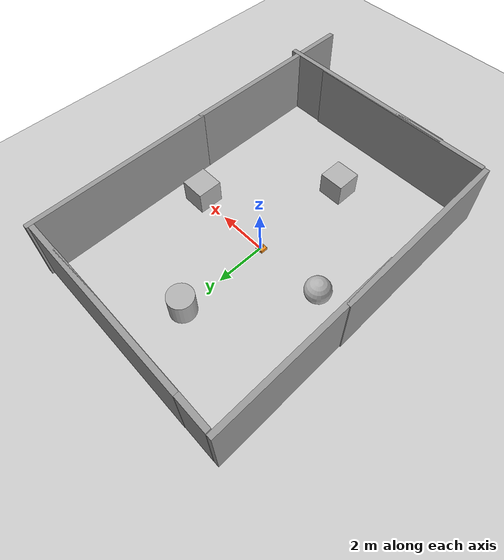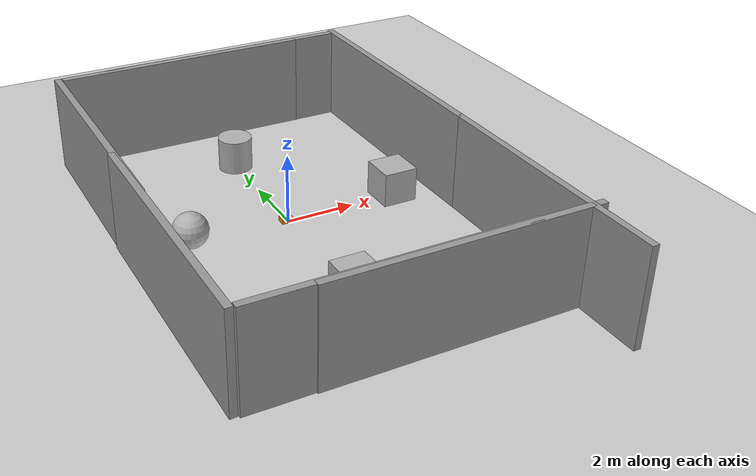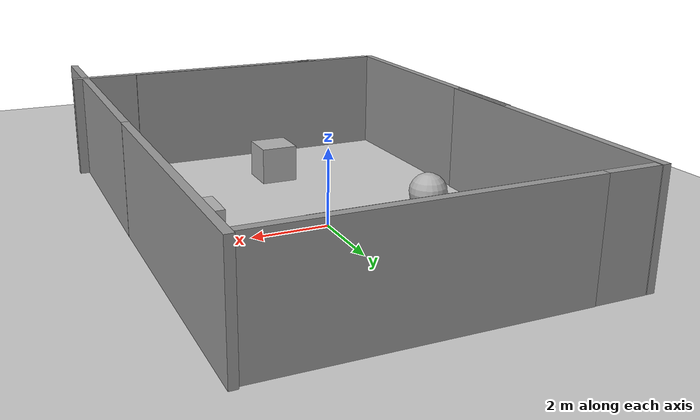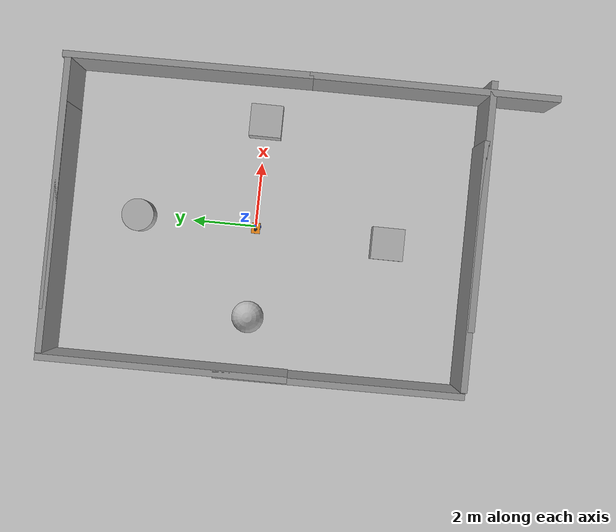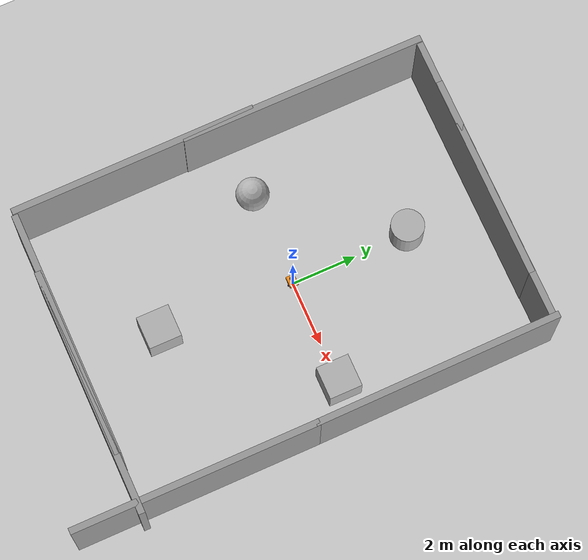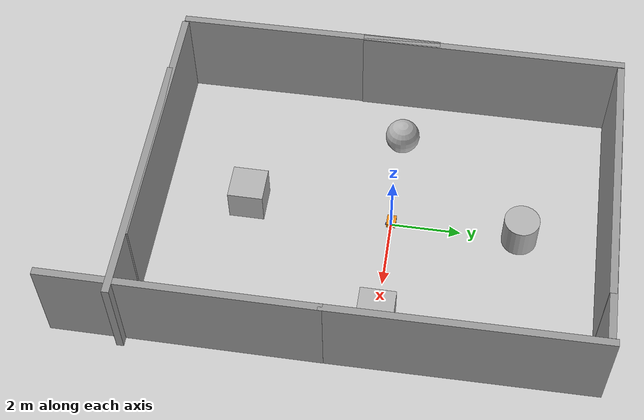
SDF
<sdf version="1.9">
 <world name="empty">
  <physics name="1ms" type="ignored">
   <max_step_size>0.001</max_step_size>
   <real_time_factor>1</real_time_factor>
   <real_time_update_rate>1000</real_time_update_rate>
  </physics>
  <plugin name="gz::sim::systems::Physics" filename="gz-sim-physics-system"/>
  <plugin name="gz::sim::systems::UserCommands" filename="gz-sim-user-commands-system"/>
  <plugin name="gz::sim::systems::SceneBroadcaster" filename="gz-sim-scene-broadcaster-system"/>
  <plugin name="gz::sim::systems::Sensors" filename="gz-sim-sensors-system">
   <render_engine>ogre2</render_engine>
  </plugin>
  <plugin name="gz::sim::systems::Contact" filename="gz-sim-contact-system"/>
  <gravity>0 0 -9.8</gravity>
  <magnetic_field>6e-06 2.3e-05 -4.2e-05</magnetic_field>
  <atmosphere type="adiabatic"/>
  <scene><ambient>0.4 0.4 0.4 1</ambient><background>0.7 0.7 0.7 1</background><shadows>true</shadows></scene>
  <model name="ground_plane">
   <static>true</static>
   <link name="link">
    <collision name="collision">
     <geometry><plane><normal>0 0 1</normal><size>100 100</size></plane></geometry>
    </collision>
    <visual name="visual">
     <geometry><plane><normal>0 0 1</normal><size>100 100</size></plane></geometry>
     <material>
      <ambient>0.8 0.8 0.8 1</ambient>
      <diffuse>0.8 0.8 0.8 1</diffuse>
      <specular>0.8 0.8 0.8 1</specular>
     </material>
    </visual>
    <inertial>
     <mass>1</mass>
     <inertia><ixx>1</ixx><ixy>0</ixy><ixz>0</ixz><iyy>1</iyy><iyz>0</iyz><izz>1</izz></inertia>
    </inertial>
   </link>
  </model>
  <model name="my_bot">
   <link name="base_link">
    <inertial>
     <pose>-0.066387 0 0.080597 0 -0 0</pose>
     <mass>0.62</mass>
     <inertia>
      <ixx>0.0056295399999999997</ixx>
      <ixy>0</ixy>
      <ixz>0.00047445700000000001</ixz>
      <iyy>0.0076677899999999998</iyy>
      <iyz>0</iyz>
      <izz>0.00802573</izz>
     </inertia>
    </inertial>
    <collision name="base_link_fixed_joint_lump__chassis_collision">
     <pose>-0.0585 0 0.059 0 0 0</pose>
     <geometry><box><size>0.335 0.265 0.138</size></box></geometry>
    </collision>
    <collision name="base_link_fixed_joint_lump__caster_wheel_collision_1">
     <pose>-0.151 0 -0.023 0 0 0</pose>
     <geometry><sphere><radius>0.01</radius></sphere></geometry>
     <surface><friction><ode><mu>0.001</mu><mu2>0.001</mu2></ode></friction></surface>
    </collision>
    <collision name="base_link_fixed_joint_lump__laser_frame_collision_2">
     <pose>-0.104 0 0.202 0 0 0</pose>
     <geometry>
      <cylinder><length>0.040000000000000001</length><radius>0.050000000000000003</radius></cylinder>
     </geometry>
    </collision>
    <collision name="base_link_fixed_joint_lump__imu_link_collision_3">
     <pose>0 0 0.05 0 0 0</pose>
     <geometry><box><size>0.02 0.02 0.02</size></box></geometry>
    </collision>
    <visual name="base_link_fixed_joint_lump__chassis_visual">
     <pose>-0.0585 0 0.059 0 0 0</pose>
     <geometry><box><size>0.335 0.265 0.138</size></box></geometry>
     <material>
      <script><name>Gazebo/Orange</name><uri>file://media/materials/scripts/gazebo.material</uri></script>
      <diffuse>1 0.375 0.125 1</diffuse>
      <ambient>1 0.375 0.125 1</ambient>
     </material>
    </visual>
    <visual name="base_link_fixed_joint_lump__camera_link_visual_1">
     <pose>0.05000000000000002 0 0.171 0 0.18 0</pose>
     <geometry><box><size>0.01 0.03 0.03</size></box></geometry>
     <material>
      <script><name>Gazebo/Black</name><uri>file://media/materials/scripts/gazebo.material</uri></script>
      <diffuse>0 0 0 1</diffuse>
      <ambient>0 0 0 1</ambient>
     </material>
    </visual>
    <visual name="base_link_fixed_joint_lump__camera_link_visual_2">
     <pose>0.04104852132870881 0 0.1218078153605939 0 0.18 0</pose>
     <geometry><cylinder><length>0.10000000000000001</length><radius>0.002</radius></cylinder></geometry>
     <material>
      <script><name>Gazebo/Black</name><uri>file://media/materials/scripts/gazebo.material</uri></script>
      <diffuse>0 0 0 1</diffuse>
      <ambient>0 0 0 1</ambient>
     </material>
    </visual>
    <visual name="base_link_fixed_joint_lump__caster_wheel_visual_3">
     <pose>-0.151 0 -0.023 0 0 0</pose>
     <geometry><sphere><radius>0.01</radius></sphere></geometry>
     <material>
      <script><name>Gazebo/White</name><uri>file://media/materials/scripts/gazebo.material</uri></script>
      <diffuse>1 1 1 1</diffuse>
      <ambient>1 1 1 1</ambient>
     </material>
    </visual>
    <visual name="base_link_fixed_joint_lump__face_link_visual_4">
     <pose>0.109 0.05 0.06900000000000001 0 1.570796326794897 0</pose>
     <geometry><cylinder><length>0.002</length><radius>0.01</radius></cylinder></geometry>
     <material>
      <script><name>Gazebo/Black</name><uri>file://media/materials/scripts/gazebo.material</uri></script>
      <diffuse>0 0 0 1</diffuse>
      <ambient>0 0 0 1</ambient>
     </material>
    </visual>
    <visual name="base_link_fixed_joint_lump__face_link_visual_5">
     <pose>0.109 -0.05 0.06900000000000001 0 1.570796326794897 0</pose>
     <geometry><cylinder><length>0.002</length><radius>0.01</radius></cylinder></geometry>
     <material>
      <script><name>Gazebo/Black</name><uri>file://media/materials/scripts/gazebo.material</uri></script>
      <diffuse>0 0 0 1</diffuse>
      <ambient>0 0 0 1</ambient>
     </material>
    </visual>
    <visual name="base_link_fixed_joint_lump__face_link_visual_6">
     <pose>0.098 0 0.059 0 1.499999999999999 0</pose>
     <geometry><cylinder><length>0.02</length><radius>0.050000000000000003</radius></cylinder></geometry>
     <material>
      <script><name>Gazebo/Black</name><uri>file://media/materials/scripts/gazebo.material</uri></script>
      <diffuse>0 0 0 1</diffuse>
      <ambient>0 0 0 1</ambient>
     </material>
    </visual>
    <visual name="base_link_fixed_joint_lump__laser_frame_visual_7">
     <pose>-0.104 0 0.202 0 0 0</pose>
     <geometry>
      <cylinder><length>0.040000000000000001</length><radius>0.050000000000000003</radius></cylinder>
     </geometry>
     <material>
      <script><name>Gazebo/Black</name><uri>file://media/materials/scripts/gazebo.material</uri></script>
      <diffuse>0 0 0 1</diffuse>
      <ambient>0 0 0 1</ambient>
     </material>
    </visual>
    <visual name="base_link_fixed_joint_lump__laser_frame_visual_8">
     <pose>-0.104 0 0.152 0 0 0</pose>
     <geometry><cylinder><length>0.10000000000000001</length><radius>0.01</radius></cylinder></geometry>
     <material>
      <script><name>Gazebo/Black</name><uri>file://media/materials/scripts/gazebo.material</uri></script>
      <diffuse>0 0 0 1</diffuse>
      <ambient>0 0 0 1</ambient>
     </material>
    </visual>
    <visual name="base_link_fixed_joint_lump__imu_link_visual_9">
     <pose>0 0 0.05 0 0 0</pose>
     <geometry><box><size>0.02 0.02 0.02</size></box></geometry>
     <material><diffuse>0 0 1 1</diffuse><ambient>0 0 1 1</ambient></material>
    </visual>
    <sensor name="camera" type="camera">
     <pose>0.05 0 0.171 0 0.18 0</pose>
     <topic>camera/image_raw</topic>
     <update_rate>10</update_rate>
     <enable_metrics>false</enable_metrics>
     <camera name="__default__">
      <horizontal_fov>1.089</horizontal_fov>
      <image><width>640</width><height>480</height><format>RGB_INT8</format><anti_aliasing>4</anti_aliasing></image>
      <camera_info_topic>camera/camera_info</camera_info_topic>
      <triggered>false</triggered>
      <clip><near>0.050000000000000003</near><far>8</far></clip>
      <save enabled="false"><path>__default__</path></save>
      <visibility_mask>4294967295</visibility_mask>
      <noise><type>none</type><mean>0</mean><stddev>0</stddev></noise>
      <distortion><k1>0</k1><k2>0</k2><k3>0</k3><p1>0</p1><p2>0</p2><center>0.5 0.5</center></distortion>
      <lens>
       <type>stereographic</type>
       <scale_to_hfov>true</scale_to_hfov>
       <cutoff_angle>1.5708</cutoff_angle>
       <env_texture_size>256</env_texture_size>
      </lens>
     </camera>
    </sensor>
    <sensor name="laser" type="gpu_lidar">
     <pose>-0.104 0 0.202 0 -0 0</pose>
     <topic>scan</topic>
     <update_rate>10</update_rate>
     <enable_metrics>false</enable_metrics>
     <lidar>
      <scan>
       <horizontal>
        <samples>360</samples>
        <resolution>1</resolution>
        <min_angle>-3.1400000000000001</min_angle>
        <max_angle>3.1400000000000001</max_angle>
       </horizontal>
       <vertical>
        <samples>1</samples>
        <min_angle>0</min_angle>
        <max_angle>0</max_angle>
        <resolution>1</resolution>
       </vertical>
      </scan>
      <range><min>0.29999999999999999</min><max>12</max><resolution>0</resolution></range>
      <noise><type>none</type><mean>0</mean><stddev>0</stddev></noise>
      <visibility_mask>4294967295</visibility_mask>
     </lidar>
    </sensor>
    <sensor name="depth_camera" type="depth_camera">
     <pose>0.1 0 0.2 0 -0 0</pose>
     <topic>depth_camera/image_raw</topic>
     <update_rate>30</update_rate>
     <enable_metrics>false</enable_metrics>
     <camera name="__default__">
      <horizontal_fov>1.0469999999999999</horizontal_fov>
      <image><width>640</width><height>480</height><format>BGR_INT8</format><anti_aliasing>4</anti_aliasing></image>
      <camera_info_topic>depth_camera/camera_info</camera_info_topic>
      <triggered>false</triggered>
      <clip><near>0.10000000000000001</near><far>10</far></clip>
      <save enabled="false"><path>__default__</path></save>
      <visibility_mask>4294967295</visibility_mask>
      <noise><type>none</type><mean>0</mean><stddev>0</stddev></noise>
      <distortion><k1>0</k1><k2>0</k2><k3>0</k3><p1>0</p1><p2>0</p2><center>0.5 0.5</center></distortion>
      <lens>
       <type>stereographic</type>
       <scale_to_hfov>true</scale_to_hfov>
       <cutoff_angle>1.5708</cutoff_angle>
       <env_texture_size>256</env_texture_size>
      </lens>
     </camera>
    </sensor>
    <sensor name="imu_sensor" type="imu">
     <pose>0 0 0.05 0 -0 0</pose>
     <topic>imu/data</topic>
     <update_rate>100</update_rate>
     <enable_metrics>false</enable_metrics>
     <imu>
      <orientation_reference_frame>
       <localization>CUSTOM</localization>
       <custom_rpy>0 0 0</custom_rpy>
       <grav_dir_x>1 0 0</grav_dir_x>
      </orientation_reference_frame>
      <angular_velocity>
       <x>
        <noise type="gaussian">
         <mean>0</mean>
         <stddev>0.0089999999999999993</stddev>
         <bias_mean>0.00075000000000000002</bias_mean>
         <bias_stddev>0.0050000000000000001</bias_stddev>
         <dynamic_bias_stddev>2.0000000000000002e-05</dynamic_bias_stddev>
         <dynamic_bias_correlation_time>400</dynamic_bias_correlation_time>
         <precision>0.00025000000000000001</precision>
        </noise>
       </x>
       <y>
        <noise type="gaussian">
         <mean>0</mean>
         <stddev>0.0089999999999999993</stddev>
         <bias_mean>0.00075000000000000002</bias_mean>
         <bias_stddev>0.0050000000000000001</bias_stddev>
         <dynamic_bias_stddev>2.0000000000000002e-05</dynamic_bias_stddev>
         <dynamic_bias_correlation_time>400</dynamic_bias_correlation_time>
         <precision>0.00025000000000000001</precision>
        </noise>
       </y>
       <z>
        <noise type="gaussian">
         <mean>0</mean>
         <stddev>0.0001</stddev>
         <bias_mean>0</bias_mean>
         <bias_stddev>1.0000000000000001e-05</bias_stddev>
         <dynamic_bias_stddev>0</dynamic_bias_stddev>
         <dynamic_bias_correlation_time>1</dynamic_bias_correlation_time>
         <precision>1.0000000000000001e-05</precision>
        </noise>
       </z>
      </angular_velocity>
      <linear_acceleration>
       <x>
        <noise type="gaussian">
         <mean>0</mean>
         <stddev>0.021000000000000001</stddev>
         <bias_mean>0.050000000000000003</bias_mean>
         <bias_stddev>0.0074999999999999997</bias_stddev>
         <dynamic_bias_stddev>0.00037500000000000001</dynamic_bias_stddev>
         <dynamic_bias_correlation_time>175</dynamic_bias_correlation_time>
         <precision>0.0050000000000000001</precision>
        </noise>
       </x>
       <y>
        <noise type="gaussian">
         <mean>0</mean>
         <stddev>0.021000000000000001</stddev>
         <bias_mean>0.050000000000000003</bias_mean>
         <bias_stddev>0.0074999999999999997</bias_stddev>
         <dynamic_bias_stddev>0.00037500000000000001</dynamic_bias_stddev>
         <dynamic_bias_correlation_time>175</dynamic_bias_correlation_time>
         <precision>0.0050000000000000001</precision>
        </noise>
       </y>
       <z>
        <noise type="gaussian">
         <mean>0</mean>
         <stddev>0.001</stddev>
         <bias_mean>0</bias_mean>
         <bias_stddev>0.00050000000000000001</bias_stddev>
         <dynamic_bias_stddev>0</dynamic_bias_stddev>
         <dynamic_bias_correlation_time>1</dynamic_bias_correlation_time>
         <precision>0.001</precision>
        </noise>
       </z>
      </linear_acceleration>
      <enable_orientation>true</enable_orientation>
     </imu>
     <plugin name="ignition::gazebo::systems::Imu" filename="ignition-gazebo-imu-system"/>
    </sensor>
   </link>
   <joint name="left_wheel_joint" type="revolute">
    <parent>base_link</parent>
    <child>left_wheel</child>
    <axis>
     <xyz>0 0 1</xyz>
     <limit>
      <lower>-10000000000000000</lower>
      <upper>10000000000000000</upper>
      <effort>inf</effort>
      <velocity>inf</velocity>
      <stiffness>100000000</stiffness>
      <dissipation>1</dissipation>
     </limit>
     <dynamics>
      <spring_reference>0</spring_reference>
      <spring_stiffness>0</spring_stiffness>
      <damping>0</damping>
      <friction>0</friction>
     </dynamics>
    </axis>
   </joint>
   <link name="left_wheel">
    <pose>0 0.1485 0 -1.5708 -0 -0</pose>
    <inertial>
     <mass>0.050000000000000003</mass>
     <inertia>
      <ixx>1.6429199999999998e-05</ixx>
      <ixy>0</ixy>
      <ixz>0</ixz>
      <iyy>1.6429199999999998e-05</iyy>
      <iyz>0</iyz>
      <izz>2.7225000000000001e-05</izz>
     </inertia>
    </inertial>
    <collision name="left_wheel_collision">
     <geometry><sphere><radius>0.033000000000000002</radius></sphere></geometry>
    </collision>
    <visual name="left_wheel_visual">
     <geometry>
      <cylinder><length>0.025999999999999999</length><radius>0.033000000000000002</radius></cylinder>
     </geometry>
     <material>
      <script><name>Gazebo/Blue</name><uri>file://media/materials/scripts/gazebo.material</uri></script>
      <diffuse>0.25 0.25 1 1</diffuse>
      <ambient>0.25 0.25 1 1</ambient>
     </material>
    </visual>
   </link>
   <joint name="right_wheel_joint" type="revolute">
    <parent>base_link</parent>
    <child>right_wheel</child>
    <axis>
     <xyz>0 0 -1</xyz>
     <limit>
      <lower>-10000000000000000</lower>
      <upper>10000000000000000</upper>
      <effort>inf</effort>
      <velocity>inf</velocity>
      <stiffness>100000000</stiffness>
      <dissipation>1</dissipation>
     </limit>
     <dynamics>
      <spring_reference>0</spring_reference>
      <spring_stiffness>0</spring_stiffness>
      <damping>0</damping>
      <friction>0</friction>
     </dynamics>
    </axis>
   </joint>
   <link name="right_wheel">
    <pose>0 -0.1485 0 1.5708 -0 0</pose>
    <inertial>
     <mass>0.050000000000000003</mass>
     <inertia>
      <ixx>1.6429199999999998e-05</ixx>
      <ixy>0</ixy>
      <ixz>0</ixz>
      <iyy>1.6429199999999998e-05</iyy>
      <iyz>0</iyz>
      <izz>2.7225000000000001e-05</izz>
     </inertia>
    </inertial>
    <collision name="right_wheel_collision">
     <geometry><sphere><radius>0.033000000000000002</radius></sphere></geometry>
    </collision>
    <visual name="right_wheel_visual">
     <geometry>
      <cylinder><length>0.025999999999999999</length><radius>0.033000000000000002</radius></cylinder>
     </geometry>
     <material>
      <script><name>Gazebo/Blue</name><uri>file://media/materials/scripts/gazebo.material</uri></script>
      <diffuse>0.25 0.25 1 1</diffuse>
      <ambient>0.25 0.25 1 1</ambient>
     </material>
    </visual>
   </link>
   <plugin name="gz_ros2_control::GazeboSimROS2ControlPlugin" filename="libgz_ros2_control-system.so">
    <parameters>/home/ziad/ros2_ws/install/articubot_one/share/articubot_one/config/my_controllers.yaml</parameters>
    <parameters>/home/ziad/ros2_ws/install/articubot_one/share/articubot_one/config/gaz_ros2_ctl_use_sim.yaml</parameters>
   </plugin>
   <frame name="base_footprint_joint" attached_to="base_link"/>
   <frame name="base_footprint" attached_to="base_footprint_joint"/>
   <frame name="camera_optical_joint" attached_to="camera_link"><pose>0 0 0 -1.5708 -0 -1.5708</pose></frame>
   <frame name="camera_link_optical" attached_to="camera_optical_joint"/>
   <frame name="camera_joint" attached_to="chassis"><pose>0.276 0 0.181 0 0.18 0</pose></frame>
   <frame name="camera_link" attached_to="camera_joint"/>
   <frame name="caster_wheel_joint" attached_to="chassis"><pose>0.075 0 -0.013 0 -0 0</pose></frame>
   <frame name="caster_wheel" attached_to="caster_wheel_joint"/>
   <frame name="face_joint" attached_to="chassis"><pose>0.335 0 0.069 0 -0 0</pose></frame>
   <frame name="face_link" attached_to="face_joint"/>
   <frame name="laser_joint" attached_to="chassis"><pose>0.122 0 0.212 0 -0 0</pose></frame>
   <frame name="laser_frame" attached_to="laser_joint"/>
   <frame name="chassis_joint" attached_to="base_link"><pose>-0.226 0 -0.01 0 -0 0</pose></frame>
   <frame name="chassis" attached_to="chassis_joint"/>
   <frame name="depth_camera_joint" attached_to="base_link"><pose>0.1 0 0.2 0 -0 0</pose></frame>
   <frame name="depth_camera_link" attached_to="depth_camera_joint"/>
   <frame name="imu_joint" attached_to="base_link"><pose>0 0 0.05 0 -0 0</pose></frame>
   <frame name="imu_link" attached_to="imu_joint"/>
   <pose>-0 -0 0.033 0 0 -0</pose>
   <static>false</static>
  </model>
  <model name="box">
   <pose>3.27956 -0.018967 0.5 0 0 -0</pose>
   <link name="box_link">
    <inertial>
     <inertia><ixx>0.16666</ixx><ixy>0</ixy><ixz>0</ixz><iyy>0.16666</iyy><iyz>0</iyz><izz>0.16666</izz></inertia>
     <mass>1</mass>
    </inertial>
    <collision name="box_collision"><geometry><box><size>1 1 1</size></box></geometry></collision>
    <visual name="box_visual">
     <geometry><box><size>1 1 1</size></box></geometry>
     <material>
      <ambient>0.3 0.3 0.3 1</ambient>
      <diffuse>0.7 0.7 0.7 1</diffuse>
      <specular>1 1 1 1</specular>
     </material>
    </visual>
   </link>
   <static>false</static>
  </model>
  <model name="box_0">
   <pose>-0.15949 -4.14545 0.5 0 0 -0</pose>
   <link name="box_link">
    <inertial>
     <inertia><ixx>0.16666</ixx><ixy>0</ixy><ixz>0</ixz><iyy>0.16666</iyy><iyz>0</iyz><izz>0.16666</izz></inertia>
     <mass>1</mass>
    </inertial>
    <collision name="box_collision"><geometry><box><size>1 1 1</size></box></geometry></collision>
    <visual name="box_visual">
     <geometry><box><size>1 1 1</size></box></geometry>
     <material>
      <ambient>0.3 0.3 0.3 1</ambient>
      <diffuse>0.7 0.7 0.7 1</diffuse>
      <specular>1 1 1 1</specular>
     </material>
    </visual>
   </link>
   <static>false</static>
  </model>
  <model name="sphere">
   <pose>-2.85184 -0.029116 0.5 0 -0 0</pose>
   <link name="sphere_link">
    <inertial>
     <inertia>
      <ixx>0.10000000000000001</ixx>
      <ixy>0</ixy>
      <ixz>0</ixz>
      <iyy>0.10000000000000001</iyy>
      <iyz>0</iyz>
      <izz>0.10000000000000001</izz>
     </inertia>
     <mass>1</mass>
    </inertial>
    <collision name="sphere_collision"><geometry><sphere><radius>0.5</radius></sphere></geometry></collision>
    <visual name="sphere_visual">
     <geometry><sphere><radius>0.5</radius></sphere></geometry>
     <material>
      <ambient>0.3 0.3 0.3 1</ambient>
      <diffuse>0.7 0.7 0.7 1</diffuse>
      <specular>1 1 1 1</specular>
     </material>
    </visual>
   </link>
   <static>false</static>
  </model>
  <model name="cylinder">
   <pose>-0.010856 3.65311 0.499999 -0 0 0</pose>
   <link name="cylinder_link">
    <inertial>
     <inertia>
      <ixx>0.14580000000000001</ixx>
      <ixy>0</ixy>
      <ixz>0</ixz>
      <iyy>0.14580000000000001</iyy>
      <iyz>0</iyz>
      <izz>0.125</izz>
     </inertia>
     <mass>1</mass>
    </inertial>
    <collision name="cylinder_collision">
     <geometry><cylinder><radius>0.5</radius><length>1</length></cylinder></geometry>
    </collision>
    <visual name="cylinder_visual">
     <geometry><cylinder><radius>0.5</radius><length>1</length></cylinder></geometry>
     <material>
      <ambient>0.3 0.3 0.3 1</ambient>
      <diffuse>0.7 0.7 0.7 1</diffuse>
      <specular>1 1 1 1</specular>
     </material>
    </visual>
   </link>
   <static>false</static>
  </model>
  <model name="grey_wall">
   <static>true</static>
   <link name="link">
    <pose>0 0 1.4 0 -0 0</pose>
    <collision name="collision"><geometry><box><size>7.5 0.2 2.8</size></box></geometry></collision>
    <visual name="visual">
     <cast_shadows>false</cast_shadows>
     <geometry><box><size>7.5 0.2 2.8</size></box></geometry>
     <material>
      <script>
       <uri>https://fuel.gazebosim.org/1.0/openrobotics/models/grey wall/3/files/materials/scripts</uri>
       <uri>https://fuel.gazebosim.org/1.0/openrobotics/models/grey wall/3/files/materials/textures</uri>
       <name>vrc/grey_wall</name>
      </script>
     </material>
    </visual>
    <inertial>
     <mass>1</mass>
     <inertia><ixx>1</ixx><ixy>0</ixy><ixz>0</ixz><iyy>1</iyy><iyz>0</iyz><izz>1</izz></inertia>
    </inertial>
   </link>
   <pose>1.19439 -6.72818 0 0 -0 0</pose>
  </model>
  <model name="grey_wall_0">
   <static>true</static>
   <link name="link">
    <pose>0 0 1.4 0 -0 0</pose>
    <collision name="collision"><geometry><box><size>7.5 0.2 2.8</size></box></geometry></collision>
    <visual name="visual">
     <cast_shadows>false</cast_shadows>
     <geometry><box><size>7.5 0.2 2.8</size></box></geometry>
     <material>
      <script>
       <uri>https://fuel.gazebosim.org/1.0/openrobotics/models/grey wall/3/files/materials/scripts</uri>
       <uri>https://fuel.gazebosim.org/1.0/openrobotics/models/grey wall/3/files/materials/textures</uri>
       <name>vrc/grey_wall</name>
      </script>
     </material>
    </visual>
    <inertial>
     <mass>1</mass>
     <inertia><ixx>1</ixx><ixy>0</ixy><ixz>0</ixz><iyy>1</iyy><iyz>0</iyz><izz>1</izz></inertia>
    </inertial>
   </link>
   <pose>-0.601496 -6.68648 0 0 -0 0</pose>
  </model>
  <model name="grey_wall_1">
   <static>true</static>
   <link name="link">
    <pose>0 0 1.4 0 -0 0</pose>
    <collision name="collision"><geometry><box><size>7.5 0.2 2.8</size></box></geometry></collision>
    <visual name="visual">
     <cast_shadows>false</cast_shadows>
     <geometry><box><size>7.5 0.2 2.8</size></box></geometry>
     <material>
      <script>
       <uri>https://fuel.gazebosim.org/1.0/openrobotics/models/grey wall/3/files/materials/scripts</uri>
       <uri>https://fuel.gazebosim.org/1.0/openrobotics/models/grey wall/3/files/materials/textures</uri>
       <name>vrc/grey_wall</name>
      </script>
     </material>
    </visual>
    <inertial>
     <mass>1</mass>
     <inertia><ixx>1</ixx><ixy>0</ixy><ixz>0</ixz><iyy>1</iyy><iyz>0</iyz><izz>1</izz></inertia>
    </inertial>
   </link>
   <pose>0.652384 5.96661 0 0 -0 0</pose>
  </model>
  <model name="grey_wall_2">
   <static>true</static>
   <link name="link">
    <pose>0 0 1.4 0 -0 0</pose>
    <collision name="collision"><geometry><box><size>7.5 0.2 2.8</size></box></geometry></collision>
    <visual name="visual">
     <cast_shadows>false</cast_shadows>
     <geometry><box><size>7.5 0.2 2.8</size></box></geometry>
     <material>
      <script>
       <uri>https://fuel.gazebosim.org/1.0/openrobotics/models/grey wall/3/files/materials/scripts</uri>
       <uri>https://fuel.gazebosim.org/1.0/openrobotics/models/grey wall/3/files/materials/textures</uri>
       <name>vrc/grey_wall</name>
      </script>
     </material>
    </visual>
    <inertial>
     <mass>1</mass>
     <inertia><ixx>1</ixx><ixy>0</ixy><ixz>0</ixz><iyy>1</iyy><iyz>0</iyz><izz>1</izz></inertia>
    </inertial>
   </link>
   <pose>-0.65092 5.95699 0 0 -0 0</pose>
  </model>
  <model name="grey_wall_3">
   <static>true</static>
   <link name="link">
    <pose>0 0 1.4 0 -0 0</pose>
    <collision name="collision"><geometry><box><size>7.5 0.2 2.8</size></box></geometry></collision>
    <visual name="visual">
     <cast_shadows>false</cast_shadows>
     <geometry><box><size>7.5 0.2 2.8</size></box></geometry>
     <material>
      <script>
       <uri>https://fuel.gazebosim.org/1.0/openrobotics/models/grey wall/3/files/materials/scripts</uri>
       <uri>https://fuel.gazebosim.org/1.0/openrobotics/models/grey wall/3/files/materials/textures</uri>
       <name>vrc/grey_wall</name>
      </script>
     </material>
    </visual>
    <inertial>
     <mass>1</mass>
     <inertia><ixx>1</ixx><ixy>0</ixy><ixz>0</ixz><iyy>1</iyy><iyz>0</iyz><izz>1</izz></inertia>
    </inertial>
   </link>
   <pose>-4.51086 2.30369 0 0 -0 1.57473</pose>
  </model>
  <model name="grey_wall_4">
   <static>true</static>
   <link name="link">
    <pose>0 0 1.4 0 -0 0</pose>
    <collision name="collision"><geometry><box><size>7.5 0.2 2.8</size></box></geometry></collision>
    <visual name="visual">
     <cast_shadows>false</cast_shadows>
     <geometry><box><size>7.5 0.2 2.8</size></box></geometry>
     <material>
      <script>
       <uri>https://fuel.gazebosim.org/1.0/openrobotics/models/grey wall/3/files/materials/scripts</uri>
       <uri>https://fuel.gazebosim.org/1.0/openrobotics/models/grey wall/3/files/materials/textures</uri>
       <name>vrc/grey_wall</name>
      </script>
     </material>
    </visual>
    <inertial>
     <mass>1</mass>
     <inertia><ixx>1</ixx><ixy>0</ixy><ixz>0</ixz><iyy>1</iyy><iyz>0</iyz><izz>1</izz></inertia>
    </inertial>
   </link>
   <pose>-4.50638 -2.9777 0 0 -0 1.57978</pose>
  </model>
  <model name="grey_wall_5">
   <static>true</static>
   <link name="link">
    <pose>0 0 1.4 0 -0 0</pose>
    <collision name="collision"><geometry><box><size>7.5 0.2 2.8</size></box></geometry></collision>
    <visual name="visual">
     <cast_shadows>false</cast_shadows>
     <geometry><box><size>7.5 0.2 2.8</size></box></geometry>
     <material>
      <script>
       <uri>https://fuel.gazebosim.org/1.0/openrobotics/models/grey wall/3/files/materials/scripts</uri>
       <uri>https://fuel.gazebosim.org/1.0/openrobotics/models/grey wall/3/files/materials/textures</uri>
       <name>vrc/grey_wall</name>
      </script>
     </material>
    </visual>
    <inertial>
     <mass>1</mass>
     <inertia><ixx>1</ixx><ixy>0</ixy><ixz>0</ixz><iyy>1</iyy><iyz>0</iyz><izz>1</izz></inertia>
    </inertial>
   </link>
   <pose>4.53934 2.39441 0 0 0 -1.56071</pose>
  </model>
  <model name="grey_wall_6">
   <static>true</static>
   <link name="link">
    <pose>0 0 1.4 0 -0 0</pose>
    <collision name="collision"><geometry><box><size>7.5 0.2 2.8</size></box></geometry></collision>
    <visual name="visual">
     <cast_shadows>false</cast_shadows>
     <geometry><box><size>7.5 0.2 2.8</size></box></geometry>
     <material>
      <script>
       <uri>https://fuel.gazebosim.org/1.0/openrobotics/models/grey wall/3/files/materials/scripts</uri>
       <uri>https://fuel.gazebosim.org/1.0/openrobotics/models/grey wall/3/files/materials/textures</uri>
       <name>vrc/grey_wall</name>
      </script>
     </material>
    </visual>
    <inertial>
     <mass>1</mass>
     <inertia><ixx>1</ixx><ixy>0</ixy><ixz>0</ixz><iyy>1</iyy><iyz>0</iyz><izz>1</izz></inertia>
    </inertial>
   </link>
   <pose>4.58662 -4.98664 0 0 -0 1.57295</pose>
  </model>
  <light name="sun" type="directional">
   <pose>0 0 10 0 -0 0</pose>
   <intensity>1</intensity>
   <direction>-0.5 0.1 -0.9</direction>
   <diffuse>0.8 0.8 0.8 1</diffuse>
   <specular>0.2 0.2 0.2 1</specular>
   <attenuation>
    <range>1000</range>
    <linear>0.01</linear>
    <constant>0.90000000000000002</constant>
    <quadratic>0.001</quadratic>
   </attenuation>
   <spot><inner_angle>0</inner_angle><outer_angle>0</outer_angle><falloff>0</falloff></spot>
  </light>
 </world>
</sdf>
